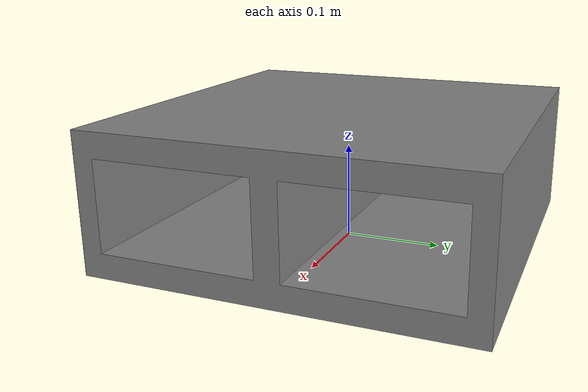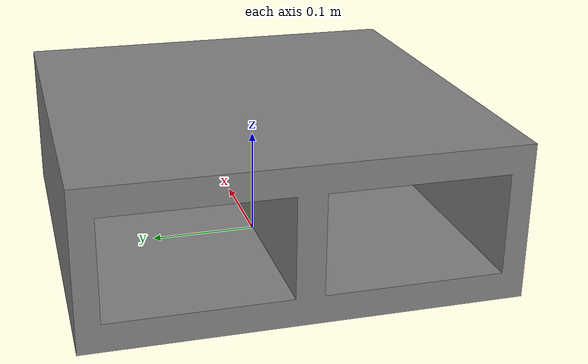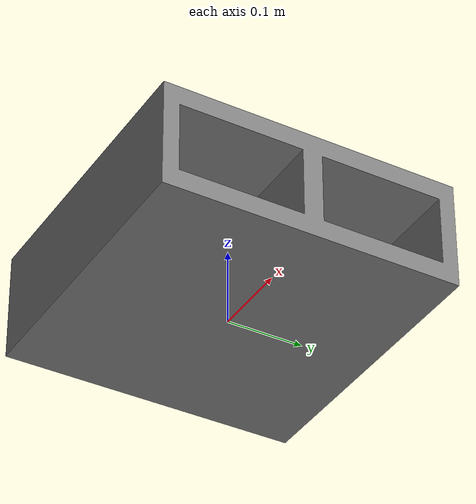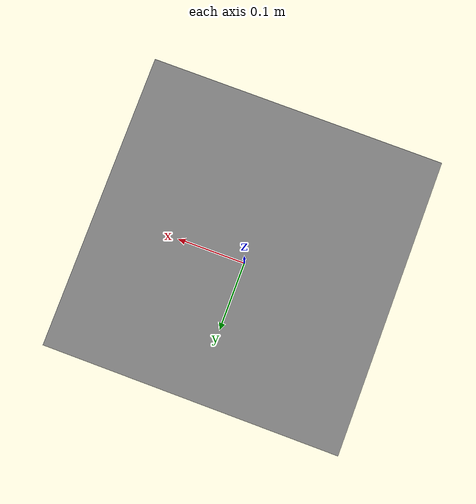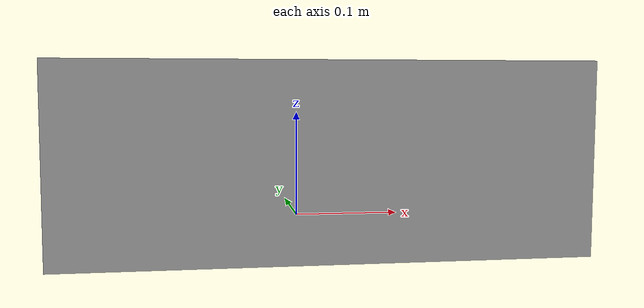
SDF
<?xml version="1.0" ?>
<sdf version="1.5">
  <model name="cinderblock2">
    <link name="link">
      <inertial>
        <pose>0 0 0.0714375 0 0 0</pose>
        <mass>5</mass>
        <!-- approximate as uniform box 0.387 x 0.387 x 0.092 m -->
        <inertia>
          <ixx>0.06814656666666667</ixx>
          <ixy>0.0000</ixy>
          <iyy>0.06814656666666667</iyy>
          <ixz>0.0000</ixz>
          <iyz>0.0000</iyz>
          <izz>0.1248075</izz>
        </inertia>
      </inertial>
      <visual name="visual">
        <geometry>
          <mesh>
            <uri>model://cinderblock2/meshes/cinder_block_wide.dae</uri>
          </mesh>
        </geometry>
      </visual>
      <collision name="top">
        <pose>0 0 0.130175 0 0 0</pose>
        <geometry>
          <box>
            <size>0.387353556 0.387353556 0.0254</size>
          </box>
        </geometry>
        <surface>
          <contact>
            <ode>
              <max_vel>0.1</max_vel>
              <min_depth>0.001</min_depth>
            </ode>
          </contact>
          <friction>
            <ode>
              <mu>1.0</mu>
              <mu2>1.0</mu2>
            </ode>
          </friction>
        </surface>
      </collision>
      <collision name="bottom">
        <pose>0 0 0.0127 0 0 0</pose>
        <geometry>
          <box>
            <size>0.387353556 0.387353556 0.0254</size>
          </box>
        </geometry>
        <surface>
          <contact>
            <ode>
              <max_vel>0.1</max_vel>
              <min_depth>0.001</min_depth>
            </ode>
          </contact>
          <friction>
            <ode>
              <mu>1.0</mu>
              <mu2>1.0</mu2>
            </ode>
          </friction>
        </surface>
      </collision>
      <collision name="left">
        <pose>0 -0.183355107 0.0714375 0 0 0</pose>
        <geometry>
          <box>
            <size>0.387353556 0.020643342 0.092075</size>
          </box>
        </geometry>
        <surface>
          <contact>
            <ode>
              <max_vel>0.1</max_vel>
              <min_depth>0.001</min_depth>
            </ode>
          </contact>
          <friction>
            <ode>
              <mu>1.0</mu>
              <mu2>1.0</mu2>
            </ode>
          </friction>
        </surface>
      </collision>
      <collision name="right">
        <pose>0 0.183355107 0.0714375 0 0 0</pose>
        <geometry>
          <box>
            <size>0.387353556 0.020643342 0.092075</size>
          </box>
        </geometry>
        <surface>
          <contact>
            <ode>
              <max_vel>0.1</max_vel>
              <min_depth>0.001</min_depth>
            </ode>
          </contact>
          <friction>
            <ode>
              <mu>1.0</mu>
              <mu2>1.0</mu2>
            </ode>
          </friction>
        </surface>
      </collision>
      <collision name="middle">
        <pose>0 0 0.0714375 0 0 0</pose>
        <geometry>
          <box>
            <size>0.387353556 0.0254 0.092075</size>
          </box>
        </geometry>
        <surface>
          <contact>
            <ode>
              <max_vel>0.1</max_vel>
              <min_depth>0.001</min_depth>
            </ode>
          </contact>
          <friction>
            <ode>
              <mu>1.0</mu>
              <mu2>1.0</mu2>
            </ode>
          </friction>
        </surface>
      </collision>
    </link>
  </model>
</sdf>
